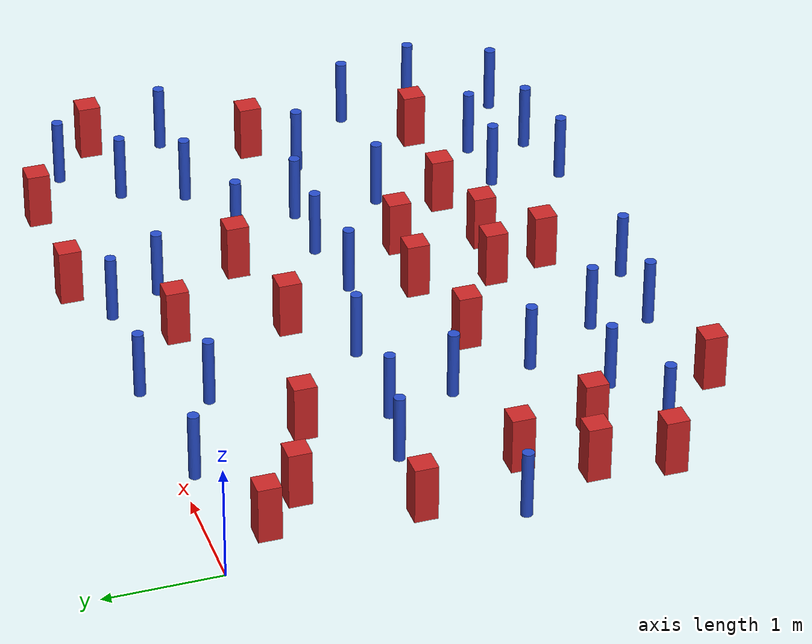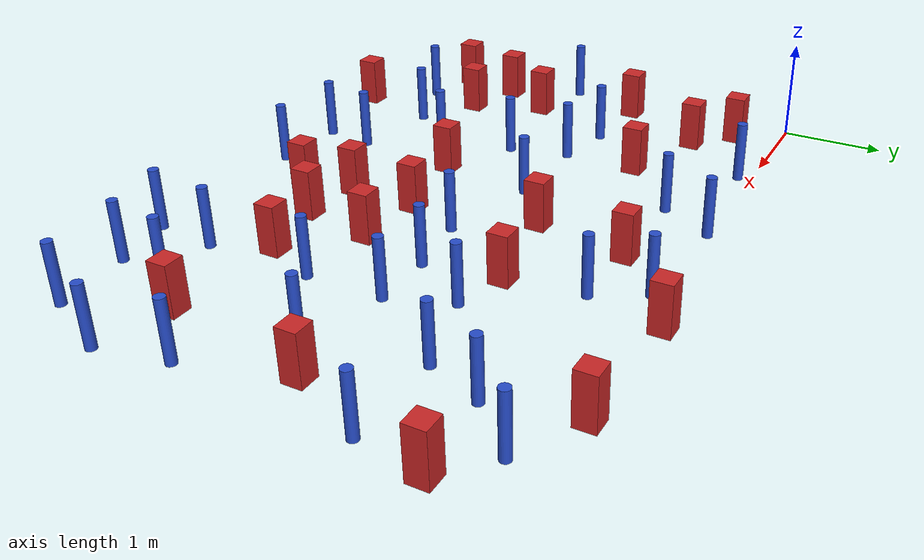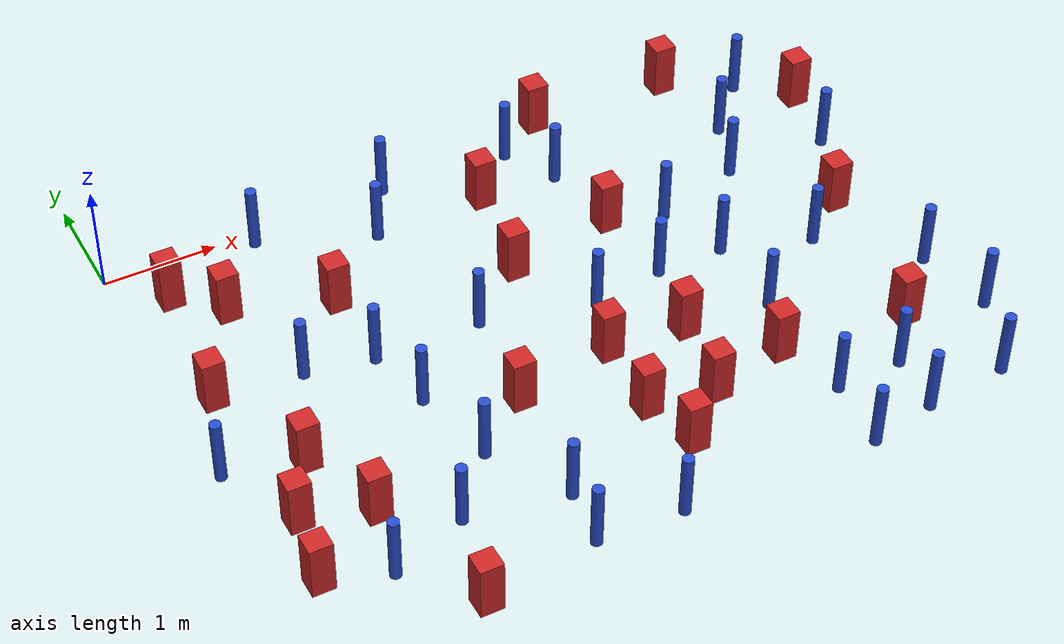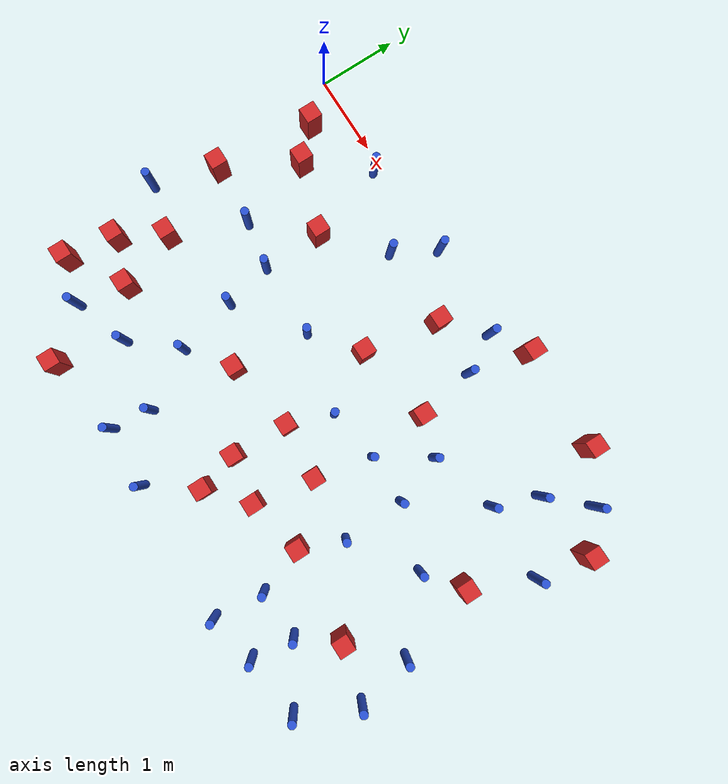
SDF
<sdf version="1.6">
 <model name="dense_77">
  <model name="square_post_obstacle9">
   <static>true</static>
   <pose>0.414913555912 -0.457877879147 1.91545236811e-07 -7.35059704564e-06 1.12565212e-07 2.39332434364e-05</pose>
   <link name="link">
    <pose>0 0 0.25 0 -0 0</pose>
    <inertial>
     <mass>100</mass>
     <inertia>
      <ixx>0.166667</ixx>
      <ixy>0</ixy>
      <ixz>0</ixz>
      <iyy>0.166667</iyy>
      <iyz>0</iyz>
      <izz>0.166667</izz>
     </inertia>
    </inertial>
    <collision name="collision"><geometry><box><size>.2 .2 .5</size></box></geometry></collision>
    <visual name="visual">
     <geometry><box><size>.2 .2 .5</size></box></geometry>
     <material>
      <script><name>Gazebo/Red</name><uri>file://media/materials/scripts/gazebo.material</uri></script>
     </material>
    </visual>
   </link>
  </model>
  <model name="pole_obstacle17">
   <static>true</static>
   <pose>2.30088741263 -4.41169465217 7.38925637345e-09 -8.47170692798e-08 1.24976765033e-08 -1.74513093019e-07</pose>
   <link name="link">
    <pose>0 0 0.3 0 -0 0</pose>
    <inertial>
     <mass>1</mass>
     <inertia><ixx>0.145833</ixx><ixy>0</ixy><ixz>0</ixz><iyy>0.145833</iyy><iyz>0</iyz><izz>0.125</izz></inertia>
    </inertial>
    <collision name="collision">
     <geometry><cylinder><radius>0.05</radius><length>.6</length></cylinder></geometry>
    </collision>
    <visual name="visual">
     <geometry><cylinder><radius>0.05</radius><length>.6</length></cylinder></geometry>
     <material>
      <script><name>Gazebo/Blue</name><uri>file://media/materials/scripts/gazebo.material</uri></script>
     </material>
    </visual>
   </link>
  </model>
  <model name="pole_obstacle18">
   <static>true</static>
   <pose>4.81392823287 -3.89418730835 7.38925637345e-09 -8.47170692798e-08 1.24976764937e-08 -1.74513093023e-07</pose>
   <link name="link">
    <pose>0 0 0.3 0 -0 0</pose>
    <inertial>
     <mass>1</mass>
     <inertia><ixx>0.145833</ixx><ixy>0</ixy><ixz>0</ixz><iyy>0.145833</iyy><iyz>0</iyz><izz>0.125</izz></inertia>
    </inertial>
    <collision name="collision">
     <geometry><cylinder><radius>0.05</radius><length>.6</length></cylinder></geometry>
    </collision>
    <visual name="visual">
     <geometry><cylinder><radius>0.05</radius><length>.6</length></cylinder></geometry>
     <material>
      <script><name>Gazebo/Blue</name><uri>file://media/materials/scripts/gazebo.material</uri></script>
     </material>
    </visual>
   </link>
  </model>
  <model name="pole_obstacle27">
   <static>true</static>
   <pose>2.58216904432 -1.89217607525 7.38925637345e-09 -8.471706928e-08 1.24976765152e-08 -1.74513093012e-07</pose>
   <link name="link">
    <pose>0 0 0.3 0 -0 0</pose>
    <inertial>
     <mass>1</mass>
     <inertia><ixx>0.145833</ixx><ixy>0</ixy><ixz>0</ixz><iyy>0.145833</iyy><iyz>0</iyz><izz>0.125</izz></inertia>
    </inertial>
    <collision name="collision">
     <geometry><cylinder><radius>0.05</radius><length>.6</length></cylinder></geometry>
    </collision>
    <visual name="visual">
     <geometry><cylinder><radius>0.05</radius><length>.6</length></cylinder></geometry>
     <material>
      <script><name>Gazebo/Blue</name><uri>file://media/materials/scripts/gazebo.material</uri></script>
     </material>
    </visual>
   </link>
  </model>
  <model name="pole_obstacle28">
   <static>true</static>
   <pose>6.43142556251 -3.62551673232 7.38925637345e-09 -8.47170692798e-08 1.24976764937e-08 -1.74513093023e-07</pose>
   <link name="link">
    <pose>0 0 0.3 0 -0 0</pose>
    <inertial>
     <mass>1</mass>
     <inertia><ixx>0.145833</ixx><ixy>0</ixy><ixz>0</ixz><iyy>0.145833</iyy><iyz>0</iyz><izz>0.125</izz></inertia>
    </inertial>
    <collision name="collision">
     <geometry><cylinder><radius>0.05</radius><length>.6</length></cylinder></geometry>
    </collision>
    <visual name="visual">
     <geometry><cylinder><radius>0.05</radius><length>.6</length></cylinder></geometry>
     <material>
      <script><name>Gazebo/Blue</name><uri>file://media/materials/scripts/gazebo.material</uri></script>
     </material>
    </visual>
   </link>
  </model>
  <model name="square_post_obstacle23">
   <static>true</static>
   <pose>3.29476710435 -0.517945850544 1.91545236811e-07 -7.35059704564e-06 1.12565212e-07 2.39332434364e-05</pose>
   <link name="link">
    <pose>0 0 0.25 0 -0 0</pose>
    <inertial>
     <mass>100</mass>
     <inertia>
      <ixx>0.166667</ixx>
      <ixy>0</ixy>
      <ixz>0</ixz>
      <iyy>0.166667</iyy>
      <iyz>0</iyz>
      <izz>0.166667</izz>
     </inertia>
    </inertial>
    <collision name="collision"><geometry><box><size>.2 .2 .5</size></box></geometry></collision>
    <visual name="visual">
     <geometry><box><size>.2 .2 .5</size></box></geometry>
     <material>
      <script><name>Gazebo/Red</name><uri>file://media/materials/scripts/gazebo.material</uri></script>
     </material>
    </visual>
   </link>
  </model>
  <model name="square_post_obstacle28">
   <static>true</static>
   <pose>4.1805404886 0.185177053721 1.91545236811e-07 -7.35059704564e-06 1.12565212e-07 2.39332434364e-05</pose>
   <link name="link">
    <pose>0 0 0.25 0 -0 0</pose>
    <inertial>
     <mass>100</mass>
     <inertia>
      <ixx>0.166667</ixx>
      <ixy>0</ixy>
      <ixz>0</ixz>
      <iyy>0.166667</iyy>
      <iyz>0</iyz>
      <izz>0.166667</izz>
     </inertia>
    </inertial>
    <collision name="collision"><geometry><box><size>.2 .2 .5</size></box></geometry></collision>
    <visual name="visual">
     <geometry><box><size>.2 .2 .5</size></box></geometry>
     <material>
      <script><name>Gazebo/Red</name><uri>file://media/materials/scripts/gazebo.material</uri></script>
     </material>
    </visual>
   </link>
  </model>
  <model name="pole_obstacle41">
   <static>true</static>
   <pose>1.49219804884 -3.75339099654 7.38925637345e-09 -8.47170692799e-08 1.24976765053e-08 -1.74513093017e-07</pose>
   <link name="link">
    <pose>0 0 0.3 0 -0 0</pose>
    <inertial>
     <mass>1</mass>
     <inertia><ixx>0.145833</ixx><ixy>0</ixy><ixz>0</ixz><iyy>0.145833</iyy><iyz>0</iyz><izz>0.125</izz></inertia>
    </inertial>
    <collision name="collision">
     <geometry><cylinder><radius>0.05</radius><length>.6</length></cylinder></geometry>
    </collision>
    <visual name="visual">
     <geometry><cylinder><radius>0.05</radius><length>.6</length></cylinder></geometry>
     <material>
      <script><name>Gazebo/Blue</name><uri>file://media/materials/scripts/gazebo.material</uri></script>
     </material>
    </visual>
   </link>
  </model>
  <model name="square_post_obstacle31">
   <static>true</static>
   <pose>0.288418971541 -1.70368269367 1.91545236811e-07 -7.35059704564e-06 1.12565212e-07 2.39332434364e-05</pose>
   <link name="link">
    <pose>0 0 0.25 0 -0 0</pose>
    <inertial>
     <mass>100</mass>
     <inertia>
      <ixx>0.166667</ixx>
      <ixy>0</ixy>
      <ixz>0</ixz>
      <iyy>0.166667</iyy>
      <iyz>0</iyz>
      <izz>0.166667</izz>
     </inertia>
    </inertial>
    <collision name="collision"><geometry><box><size>.2 .2 .5</size></box></geometry></collision>
    <visual name="visual">
     <geometry><box><size>.2 .2 .5</size></box></geometry>
     <material>
      <script><name>Gazebo/Red</name><uri>file://media/materials/scripts/gazebo.material</uri></script>
     </material>
    </visual>
   </link>
  </model>
  <model name="pole_obstacle50">
   <static>true</static>
   <pose>2.36343220063 -3.91300759229 7.38925637345e-09 -8.47170692798e-08 1.24976764939e-08 -1.74513093025e-07</pose>
   <link name="link">
    <pose>0 0 0.3 0 -0 0</pose>
    <inertial>
     <mass>1</mass>
     <inertia><ixx>0.145833</ixx><ixy>0</ixy><ixz>0</ixz><iyy>0.145833</iyy><iyz>0</iyz><izz>0.125</izz></inertia>
    </inertial>
    <collision name="collision">
     <geometry><cylinder><radius>0.05</radius><length>.6</length></cylinder></geometry>
    </collision>
    <visual name="visual">
     <geometry><cylinder><radius>0.05</radius><length>.6</length></cylinder></geometry>
     <material>
      <script><name>Gazebo/Blue</name><uri>file://media/materials/scripts/gazebo.material</uri></script>
     </material>
    </visual>
   </link>
  </model>
  <model name="pole_obstacle52">
   <static>true</static>
   <pose>4.60872668205 -1.43632139247 7.38925637345e-09 -8.471706928e-08 1.24976765134e-08 -1.74513093015e-07</pose>
   <link name="link">
    <pose>0 0 0.3 0 -0 0</pose>
    <inertial>
     <mass>1</mass>
     <inertia><ixx>0.145833</ixx><ixy>0</ixy><ixz>0</ixz><iyy>0.145833</iyy><iyz>0</iyz><izz>0.125</izz></inertia>
    </inertial>
    <collision name="collision">
     <geometry><cylinder><radius>0.05</radius><length>.6</length></cylinder></geometry>
    </collision>
    <visual name="visual">
     <geometry><cylinder><radius>0.05</radius><length>.6</length></cylinder></geometry>
     <material>
      <script><name>Gazebo/Blue</name><uri>file://media/materials/scripts/gazebo.material</uri></script>
     </material>
    </visual>
   </link>
  </model>
  <model name="pole_obstacle55">
   <static>true</static>
   <pose>1.78070648098 -2.47461447134 7.38925637345e-09 -8.47170692799e-08 1.24976765053e-08 -1.74513093017e-07</pose>
   <link name="link">
    <pose>0 0 0.3 0 -0 0</pose>
    <inertial>
     <mass>1</mass>
     <inertia><ixx>0.145833</ixx><ixy>0</ixy><ixz>0</ixz><iyy>0.145833</iyy><iyz>0</iyz><izz>0.125</izz></inertia>
    </inertial>
    <collision name="collision">
     <geometry><cylinder><radius>0.05</radius><length>.6</length></cylinder></geometry>
    </collision>
    <visual name="visual">
     <geometry><cylinder><radius>0.05</radius><length>.6</length></cylinder></geometry>
     <material>
      <script><name>Gazebo/Blue</name><uri>file://media/materials/scripts/gazebo.material</uri></script>
     </material>
    </visual>
   </link>
  </model>
  <model name="square_post_obstacle44">
   <static>true</static>
   <pose>0.777680810335 -0.81693266986 1.91545236811e-07 -7.35059704564e-06 1.12565212e-07 2.39332434364e-05</pose>
   <link name="link">
    <pose>0 0 0.25 0 -0 0</pose>
    <inertial>
     <mass>100</mass>
     <inertia>
      <ixx>0.166667</ixx>
      <ixy>0</ixy>
      <ixz>0</ixz>
      <iyy>0.166667</iyy>
      <iyz>0</iyz>
      <izz>0.166667</izz>
     </inertia>
    </inertial>
    <collision name="collision"><geometry><box><size>.2 .2 .5</size></box></geometry></collision>
    <visual name="visual">
     <geometry><box><size>.2 .2 .5</size></box></geometry>
     <material>
      <script><name>Gazebo/Red</name><uri>file://media/materials/scripts/gazebo.material</uri></script>
     </material>
    </visual>
   </link>
  </model>
  <model name="square_post_obstacle45">
   <static>true</static>
   <pose>0.678943746648 -2.65649669118 1.91545236811e-07 -7.35059704564e-06 1.12565212e-07 2.39332434364e-05</pose>
   <link name="link">
    <pose>0 0 0.25 0 -0 0</pose>
    <inertial>
     <mass>100</mass>
     <inertia>
      <ixx>0.166667</ixx>
      <ixy>0</ixy>
      <ixz>0</ixz>
      <iyy>0.166667</iyy>
      <iyz>0</iyz>
      <izz>0.166667</izz>
     </inertia>
    </inertial>
    <collision name="collision"><geometry><box><size>.2 .2 .5</size></box></geometry></collision>
    <visual name="visual">
     <geometry><box><size>.2 .2 .5</size></box></geometry>
     <material>
      <script><name>Gazebo/Red</name><uri>file://media/materials/scripts/gazebo.material</uri></script>
     </material>
    </visual>
   </link>
  </model>
  <model name="pole_obstacle62">
   <static>true</static>
   <pose>6.36205542575 -1.22188194844 7.38925637345e-09 -8.471706928e-08 1.24976765134e-08 -1.74513093015e-07</pose>
   <link name="link">
    <pose>0 0 0.3 0 -0 0</pose>
    <inertial>
     <mass>1</mass>
     <inertia><ixx>0.145833</ixx><ixy>0</ixy><ixz>0</ixz><iyy>0.145833</iyy><iyz>0</iyz><izz>0.125</izz></inertia>
    </inertial>
    <collision name="collision">
     <geometry><cylinder><radius>0.05</radius><length>.6</length></cylinder></geometry>
    </collision>
    <visual name="visual">
     <geometry><cylinder><radius>0.05</radius><length>.6</length></cylinder></geometry>
     <material>
      <script><name>Gazebo/Blue</name><uri>file://media/materials/scripts/gazebo.material</uri></script>
     </material>
    </visual>
   </link>
  </model>
  <model name="square_post_obstacle55">
   <static>true</static>
   <pose>5.46670627018 0.142808457622 1.91545236811e-07 -7.35059704564e-06 1.12565212e-07 2.39332434364e-05</pose>
   <link name="link">
    <pose>0 0 0.25 0 -0 0</pose>
    <inertial>
     <mass>100</mass>
     <inertia>
      <ixx>0.166667</ixx>
      <ixy>0</ixy>
      <ixz>0</ixz>
      <iyy>0.166667</iyy>
      <iyz>0</iyz>
      <izz>0.166667</izz>
     </inertia>
    </inertial>
    <collision name="collision"><geometry><box><size>.2 .2 .5</size></box></geometry></collision>
    <visual name="visual">
     <geometry><box><size>.2 .2 .5</size></box></geometry>
     <material>
      <script><name>Gazebo/Red</name><uri>file://media/materials/scripts/gazebo.material</uri></script>
     </material>
    </visual>
   </link>
  </model>
  <model name="pole_obstacle69">
   <static>true</static>
   <pose>4.81837307813 -2.03980980136 7.38925637345e-09 -8.471706928e-08 1.2497676506e-08 -1.74513093017e-07</pose>
   <link name="link">
    <pose>0 0 0.3 0 -0 0</pose>
    <inertial>
     <mass>1</mass>
     <inertia><ixx>0.145833</ixx><ixy>0</ixy><ixz>0</ixz><iyy>0.145833</iyy><iyz>0</iyz><izz>0.125</izz></inertia>
    </inertial>
    <collision name="collision">
     <geometry><cylinder><radius>0.05</radius><length>.6</length></cylinder></geometry>
    </collision>
    <visual name="visual">
     <geometry><cylinder><radius>0.05</radius><length>.6</length></cylinder></geometry>
     <material>
      <script><name>Gazebo/Blue</name><uri>file://media/materials/scripts/gazebo.material</uri></script>
     </material>
    </visual>
   </link>
  </model>
  <model name="square_post_obstacle63">
   <static>true</static>
   <pose>1.63152813365 -1.12639576349 1.91545236811e-07 -7.35059704564e-06 1.12565212e-07 2.39332434364e-05</pose>
   <link name="link">
    <pose>0 0 0.25 0 -0 0</pose>
    <inertial>
     <mass>100</mass>
     <inertia>
      <ixx>0.166667</ixx>
      <ixy>0</ixy>
      <ixz>0</ixz>
      <iyy>0.166667</iyy>
      <iyz>0</iyz>
      <izz>0.166667</izz>
     </inertia>
    </inertial>
    <collision name="collision"><geometry><box><size>.2 .2 .5</size></box></geometry></collision>
    <visual name="visual">
     <geometry><box><size>.2 .2 .5</size></box></geometry>
     <material>
      <script><name>Gazebo/Red</name><uri>file://media/materials/scripts/gazebo.material</uri></script>
     </material>
    </visual>
   </link>
  </model>
  <model name="square_post_obstacle70">
   <static>true</static>
   <pose>0.268658454997 -3.81487261849 1.91545236811e-07 -7.35059704564e-06 1.12565212e-07 2.39332434364e-05</pose>
   <link name="link">
    <pose>0 0 0.25 0 -0 0</pose>
    <inertial>
     <mass>100</mass>
     <inertia>
      <ixx>0.166667</ixx>
      <ixy>0</ixy>
      <ixz>0</ixz>
      <iyy>0.166667</iyy>
      <iyz>0</iyz>
      <izz>0.166667</izz>
     </inertia>
    </inertial>
    <collision name="collision"><geometry><box><size>.2 .2 .5</size></box></geometry></collision>
    <visual name="visual">
     <geometry><box><size>.2 .2 .5</size></box></geometry>
     <material>
      <script><name>Gazebo/Red</name><uri>file://media/materials/scripts/gazebo.material</uri></script>
     </material>
    </visual>
   </link>
  </model>
  <model name="pole_obstacle84">
   <static>true</static>
   <pose>2.29625827717 -0.527513924079 7.38925637345e-09 -8.471706928e-08 1.24976765186e-08 -1.74513093012e-07</pose>
   <link name="link">
    <pose>0 0 0.3 0 -0 0</pose>
    <inertial>
     <mass>1</mass>
     <inertia><ixx>0.145833</ixx><ixy>0</ixy><ixz>0</ixz><iyy>0.145833</iyy><iyz>0</iyz><izz>0.125</izz></inertia>
    </inertial>
    <collision name="collision">
     <geometry><cylinder><radius>0.05</radius><length>.6</length></cylinder></geometry>
    </collision>
    <visual name="visual">
     <geometry><cylinder><radius>0.05</radius><length>.6</length></cylinder></geometry>
     <material>
      <script><name>Gazebo/Blue</name><uri>file://media/materials/scripts/gazebo.material</uri></script>
     </material>
    </visual>
   </link>
  </model>
  <model name="square_post_obstacle75">
   <static>true</static>
   <pose>3.91525432647 -3.47301717205 1.91545236811e-07 -7.35059704564e-06 1.12565212e-07 2.39332434364e-05</pose>
   <link name="link">
    <pose>0 0 0.25 0 -0 0</pose>
    <inertial>
     <mass>100</mass>
     <inertia>
      <ixx>0.166667</ixx>
      <ixy>0</ixy>
      <ixz>0</ixz>
      <iyy>0.166667</iyy>
      <iyz>0</iyz>
      <izz>0.166667</izz>
     </inertia>
    </inertial>
    <collision name="collision"><geometry><box><size>.2 .2 .5</size></box></geometry></collision>
    <visual name="visual">
     <geometry><box><size>.2 .2 .5</size></box></geometry>
     <material>
      <script><name>Gazebo/Red</name><uri>file://media/materials/scripts/gazebo.material</uri></script>
     </material>
    </visual>
   </link>
  </model>
  <model name="pole_obstacle93">
   <static>true</static>
   <pose>1.95817246173 -3.22002427242 7.38925637345e-09 -8.47170692799e-08 1.24976765015e-08 -1.74513093019e-07</pose>
   <link name="link">
    <pose>0 0 0.3 0 -0 0</pose>
    <inertial>
     <mass>1</mass>
     <inertia><ixx>0.145833</ixx><ixy>0</ixy><ixz>0</ixz><iyy>0.145833</iyy><iyz>0</iyz><izz>0.125</izz></inertia>
    </inertial>
    <collision name="collision">
     <geometry><cylinder><radius>0.05</radius><length>.6</length></cylinder></geometry>
    </collision>
    <visual name="visual">
     <geometry><cylinder><radius>0.05</radius><length>.6</length></cylinder></geometry>
     <material>
      <script><name>Gazebo/Blue</name><uri>file://media/materials/scripts/gazebo.material</uri></script>
     </material>
    </visual>
   </link>
  </model>
  <model name="pole_obstacle95">
   <static>true</static>
   <pose>1.32256675412 -0.126356507794 7.38925637345e-09 -8.47170692798e-08 1.24976765004e-08 -1.7451309302e-07</pose>
   <link name="link">
    <pose>0 0 0.3 0 -0 0</pose>
    <inertial>
     <mass>1</mass>
     <inertia><ixx>0.145833</ixx><ixy>0</ixy><ixz>0</ixz><iyy>0.145833</iyy><iyz>0</iyz><izz>0.125</izz></inertia>
    </inertial>
    <collision name="collision">
     <geometry><cylinder><radius>0.05</radius><length>.6</length></cylinder></geometry>
    </collision>
    <visual name="visual">
     <geometry><cylinder><radius>0.05</radius><length>.6</length></cylinder></geometry>
     <material>
      <script><name>Gazebo/Blue</name><uri>file://media/materials/scripts/gazebo.material</uri></script>
     </material>
    </visual>
   </link>
  </model>
  <model name="square_post_obstacle93">
   <static>true</static>
   <pose>4.1162038449 -1.28578636467 1.91545236811e-07 -7.35059704564e-06 1.12565212e-07 2.39332434364e-05</pose>
   <link name="link">
    <pose>0 0 0.25 0 -0 0</pose>
    <inertial>
     <mass>100</mass>
     <inertia>
      <ixx>0.166667</ixx>
      <ixy>0</ixy>
      <ixz>0</ixz>
      <iyy>0.166667</iyy>
      <iyz>0</iyz>
      <izz>0.166667</izz>
     </inertia>
    </inertial>
    <collision name="collision"><geometry><box><size>.2 .2 .5</size></box></geometry></collision>
    <visual name="visual">
     <geometry><box><size>.2 .2 .5</size></box></geometry>
     <material>
      <script><name>Gazebo/Red</name><uri>file://media/materials/scripts/gazebo.material</uri></script>
     </material>
    </visual>
   </link>
  </model>
  <model name="square_post_obstacle96">
   <static>true</static>
   <pose>3.36142323224 -2.67453290748 1.91545236811e-07 -7.35059704564e-06 1.12565212e-07 2.39332434364e-05</pose>
   <link name="link">
    <pose>0 0 0.25 0 -0 0</pose>
    <inertial>
     <mass>100</mass>
     <inertia>
      <ixx>0.166667</ixx>
      <ixy>0</ixy>
      <ixz>0</ixz>
      <iyy>0.166667</iyy>
      <iyz>0</iyz>
      <izz>0.166667</izz>
     </inertia>
    </inertial>
    <collision name="collision"><geometry><box><size>.2 .2 .5</size></box></geometry></collision>
    <visual name="visual">
     <geometry><box><size>.2 .2 .5</size></box></geometry>
     <material>
      <script><name>Gazebo/Red</name><uri>file://media/materials/scripts/gazebo.material</uri></script>
     </material>
    </visual>
   </link>
  </model>
  <model name="pole_obstacle107">
   <static>true</static>
   <pose>5.4116193506 -3.87581239472 7.38925637345e-09 -8.47170692798e-08 1.24976764937e-08 -1.74513093023e-07</pose>
   <link name="link">
    <pose>0 0 0.3 0 -0 0</pose>
    <inertial>
     <mass>1</mass>
     <inertia><ixx>0.145833</ixx><ixy>0</ixy><ixz>0</ixz><iyy>0.145833</iyy><iyz>0</iyz><izz>0.125</izz></inertia>
    </inertial>
    <collision name="collision">
     <geometry><cylinder><radius>0.05</radius><length>.6</length></cylinder></geometry>
    </collision>
    <visual name="visual">
     <geometry><cylinder><radius>0.05</radius><length>.6</length></cylinder></geometry>
     <material>
      <script><name>Gazebo/Blue</name><uri>file://media/materials/scripts/gazebo.material</uri></script>
     </material>
    </visual>
   </link>
  </model>
  <model name="pole_obstacle115">
   <static>true</static>
   <pose>3.04978709195 -4.45508612711 7.38925637345e-09 -8.47170692798e-08 1.24976765033e-08 -1.74513093019e-07</pose>
   <link name="link">
    <pose>0 0 0.3 0 -0 0</pose>
    <inertial>
     <mass>1</mass>
     <inertia><ixx>0.145833</ixx><ixy>0</ixy><ixz>0</ixz><iyy>0.145833</iyy><iyz>0</iyz><izz>0.125</izz></inertia>
    </inertial>
    <collision name="collision">
     <geometry><cylinder><radius>0.05</radius><length>.6</length></cylinder></geometry>
    </collision>
    <visual name="visual">
     <geometry><cylinder><radius>0.05</radius><length>.6</length></cylinder></geometry>
     <material>
      <script><name>Gazebo/Blue</name><uri>file://media/materials/scripts/gazebo.material</uri></script>
     </material>
    </visual>
   </link>
  </model>
  <model name="pole_obstacle118">
   <static>true</static>
   <pose>1.64452792751 -1.87641165726 7.38925637345e-09 -8.471706928e-08 1.24976765079e-08 -1.74513093017e-07</pose>
   <link name="link">
    <pose>0 0 0.3 0 -0 0</pose>
    <inertial>
     <mass>1</mass>
     <inertia><ixx>0.145833</ixx><ixy>0</ixy><ixz>0</ixz><iyy>0.145833</iyy><iyz>0</iyz><izz>0.125</izz></inertia>
    </inertial>
    <collision name="collision">
     <geometry><cylinder><radius>0.05</radius><length>.6</length></cylinder></geometry>
    </collision>
    <visual name="visual">
     <geometry><cylinder><radius>0.05</radius><length>.6</length></cylinder></geometry>
     <material>
      <script><name>Gazebo/Blue</name><uri>file://media/materials/scripts/gazebo.material</uri></script>
     </material>
    </visual>
   </link>
  </model>
  <model name="pole_obstacle120">
   <static>true</static>
   <pose>4.83011272026 -2.80245545974 7.38925637345e-09 -8.47170692798e-08 1.24976764937e-08 -1.74513093023e-07</pose>
   <link name="link">
    <pose>0 0 0.3 0 -0 0</pose>
    <inertial>
     <mass>1</mass>
     <inertia><ixx>0.145833</ixx><ixy>0</ixy><ixz>0</ixz><iyy>0.145833</iyy><iyz>0</iyz><izz>0.125</izz></inertia>
    </inertial>
    <collision name="collision">
     <geometry><cylinder><radius>0.05</radius><length>.6</length></cylinder></geometry>
    </collision>
    <visual name="visual">
     <geometry><cylinder><radius>0.05</radius><length>.6</length></cylinder></geometry>
     <material>
      <script><name>Gazebo/Blue</name><uri>file://media/materials/scripts/gazebo.material</uri></script>
     </material>
    </visual>
   </link>
  </model>
  <model name="square_post_obstacle121">
   <static>true</static>
   <pose>5.75012717869 -3.43909623136 1.91545236811e-07 -7.35059704564e-06 1.12565212e-07 2.39332434364e-05</pose>
   <link name="link">
    <pose>0 0 0.25 0 -0 0</pose>
    <inertial>
     <mass>100</mass>
     <inertia>
      <ixx>0.166667</ixx>
      <ixy>0</ixy>
      <ixz>0</ixz>
      <iyy>0.166667</iyy>
      <iyz>0</iyz>
      <izz>0.166667</izz>
     </inertia>
    </inertial>
    <collision name="collision"><geometry><box><size>.2 .2 .5</size></box></geometry></collision>
    <visual name="visual">
     <geometry><box><size>.2 .2 .5</size></box></geometry>
     <material>
      <script><name>Gazebo/Red</name><uri>file://media/materials/scripts/gazebo.material</uri></script>
     </material>
    </visual>
   </link>
  </model>
  <model name="pole_obstacle126">
   <static>true</static>
   <pose>2.58010467965 -0.0102880229091 7.38925637345e-09 -8.471706928e-08 1.24976765137e-08 -1.74513093014e-07</pose>
   <link name="link">
    <pose>0 0 0.3 0 -0 0</pose>
    <inertial>
     <mass>1</mass>
     <inertia><ixx>0.145833</ixx><ixy>0</ixy><ixz>0</ixz><iyy>0.145833</iyy><iyz>0</iyz><izz>0.125</izz></inertia>
    </inertial>
    <collision name="collision">
     <geometry><cylinder><radius>0.05</radius><length>.6</length></cylinder></geometry>
    </collision>
    <visual name="visual">
     <geometry><cylinder><radius>0.05</radius><length>.6</length></cylinder></geometry>
     <material>
      <script><name>Gazebo/Blue</name><uri>file://media/materials/scripts/gazebo.material</uri></script>
     </material>
    </visual>
   </link>
  </model>
  <model name="pole_obstacle129">
   <static>true</static>
   <pose>4.75481092513 -4.51975838768 7.38925637345e-09 -8.47170692796e-08 1.24976764786e-08 -1.74513093032e-07</pose>
   <link name="link">
    <pose>0 0 0.3 0 -0 0</pose>
    <inertial>
     <mass>1</mass>
     <inertia><ixx>0.145833</ixx><ixy>0</ixy><ixz>0</ixz><iyy>0.145833</iyy><iyz>0</iyz><izz>0.125</izz></inertia>
    </inertial>
    <collision name="collision">
     <geometry><cylinder><radius>0.05</radius><length>.6</length></cylinder></geometry>
    </collision>
    <visual name="visual">
     <geometry><cylinder><radius>0.05</radius><length>.6</length></cylinder></geometry>
     <material>
      <script><name>Gazebo/Blue</name><uri>file://media/materials/scripts/gazebo.material</uri></script>
     </material>
    </visual>
   </link>
  </model>
  <model name="square_post_obstacle125">
   <static>true</static>
   <pose>4.04993005443 -2.73640748449 1.91545236811e-07 -7.35059704564e-06 1.12565212e-07 2.39332434364e-05</pose>
   <link name="link">
    <pose>0 0 0.25 0 -0 0</pose>
    <inertial>
     <mass>100</mass>
     <inertia>
      <ixx>0.166667</ixx>
      <ixy>0</ixy>
      <ixz>0</ixz>
      <iyy>0.166667</iyy>
      <iyz>0</iyz>
      <izz>0.166667</izz>
     </inertia>
    </inertial>
    <collision name="collision"><geometry><box><size>.2 .2 .5</size></box></geometry></collision>
    <visual name="visual">
     <geometry><box><size>.2 .2 .5</size></box></geometry>
     <material>
      <script><name>Gazebo/Red</name><uri>file://media/materials/scripts/gazebo.material</uri></script>
     </material>
    </visual>
   </link>
  </model>
  <model name="square_post_obstacle127">
   <static>true</static>
   <pose>0.372890647758 -3.1906439933 1.91545236811e-07 -7.35059704564e-06 1.12565212e-07 2.39332434364e-05</pose>
   <link name="link">
    <pose>0 0 0.25 0 -0 0</pose>
    <inertial>
     <mass>100</mass>
     <inertia>
      <ixx>0.166667</ixx>
      <ixy>0</ixy>
      <ixz>0</ixz>
      <iyy>0.166667</iyy>
      <iyz>0</iyz>
      <izz>0.166667</izz>
     </inertia>
    </inertial>
    <collision name="collision"><geometry><box><size>.2 .2 .5</size></box></geometry></collision>
    <visual name="visual">
     <geometry><box><size>.2 .2 .5</size></box></geometry>
     <material>
      <script><name>Gazebo/Red</name><uri>file://media/materials/scripts/gazebo.material</uri></script>
     </material>
    </visual>
   </link>
  </model>
  <model name="pole_obstacle132">
   <static>true</static>
   <pose>3.55675411654 -2.13776649317 7.38925637345e-09 -8.47170692798e-08 1.24976764939e-08 -1.74513093025e-07</pose>
   <link name="link">
    <pose>0 0 0.3 0 -0 0</pose>
    <inertial>
     <mass>1</mass>
     <inertia><ixx>0.145833</ixx><ixy>0</ixy><ixz>0</ixz><iyy>0.145833</iyy><iyz>0</iyz><izz>0.125</izz></inertia>
    </inertial>
    <collision name="collision">
     <geometry><cylinder><radius>0.05</radius><length>.6</length></cylinder></geometry>
    </collision>
    <visual name="visual">
     <geometry><cylinder><radius>0.05</radius><length>.6</length></cylinder></geometry>
     <material>
      <script><name>Gazebo/Blue</name><uri>file://media/materials/scripts/gazebo.material</uri></script>
     </material>
    </visual>
   </link>
  </model>
  <model name="square_post_obstacle129">
   <static>true</static>
   <pose>6.46682079812 -0.575488577503 1.91545236811e-07 -7.35059704564e-06 1.12565212e-07 2.39332434364e-05</pose>
   <link name="link">
    <pose>0 0 0.25 0 -0 0</pose>
    <inertial>
     <mass>100</mass>
     <inertia>
      <ixx>0.166667</ixx>
      <ixy>0</ixy>
      <ixz>0</ixz>
      <iyy>0.166667</iyy>
      <iyz>0</iyz>
      <izz>0.166667</izz>
     </inertia>
    </inertial>
    <collision name="collision"><geometry><box><size>.2 .2 .5</size></box></geometry></collision>
    <visual name="visual">
     <geometry><box><size>.2 .2 .5</size></box></geometry>
     <material>
      <script><name>Gazebo/Red</name><uri>file://media/materials/scripts/gazebo.material</uri></script>
     </material>
    </visual>
   </link>
  </model>
  <model name="square_post_obstacle139">
   <static>true</static>
   <pose>3.46304212744 -3.87284425612 1.91545236811e-07 -7.35059704564e-06 1.12565212e-07 2.39332434364e-05</pose>
   <link name="link">
    <pose>0 0 0.25 0 -0 0</pose>
    <inertial>
     <mass>100</mass>
     <inertia>
      <ixx>0.166667</ixx>
      <ixy>0</ixy>
      <ixz>0</ixz>
      <iyy>0.166667</iyy>
      <iyz>0</iyz>
      <izz>0.166667</izz>
     </inertia>
    </inertial>
    <collision name="collision"><geometry><box><size>.2 .2 .5</size></box></geometry></collision>
    <visual name="visual">
     <geometry><box><size>.2 .2 .5</size></box></geometry>
     <material>
      <script><name>Gazebo/Red</name><uri>file://media/materials/scripts/gazebo.material</uri></script>
     </material>
    </visual>
   </link>
  </model>
  <model name="pole_obstacle144">
   <static>true</static>
   <pose>4.00464949557 -0.555028928826 7.38925637345e-09 -8.471706928e-08 1.24976765147e-08 -1.74513093015e-07</pose>
   <link name="link">
    <pose>0 0 0.3 0 -0 0</pose>
    <inertial>
     <mass>1</mass>
     <inertia><ixx>0.145833</ixx><ixy>0</ixy><ixz>0</ixz><iyy>0.145833</iyy><iyz>0</iyz><izz>0.125</izz></inertia>
    </inertial>
    <collision name="collision">
     <geometry><cylinder><radius>0.05</radius><length>.6</length></cylinder></geometry>
    </collision>
    <visual name="visual">
     <geometry><cylinder><radius>0.05</radius><length>.6</length></cylinder></geometry>
     <material>
      <script><name>Gazebo/Blue</name><uri>file://media/materials/scripts/gazebo.material</uri></script>
     </material>
    </visual>
   </link>
  </model>
  <model name="pole_obstacle152">
   <static>true</static>
   <pose>3.75185980498 -0.0852785895553 7.38925637345e-09 -8.471706928e-08 1.24976765088e-08 -1.74513093017e-07</pose>
   <link name="link">
    <pose>0 0 0.3 0 -0 0</pose>
    <inertial>
     <mass>1</mass>
     <inertia><ixx>0.145833</ixx><ixy>0</ixy><ixz>0</ixz><iyy>0.145833</iyy><iyz>0</iyz><izz>0.125</izz></inertia>
    </inertial>
    <collision name="collision">
     <geometry><cylinder><radius>0.05</radius><length>.6</length></cylinder></geometry>
    </collision>
    <visual name="visual">
     <geometry><cylinder><radius>0.05</radius><length>.6</length></cylinder></geometry>
     <material>
      <script><name>Gazebo/Blue</name><uri>file://media/materials/scripts/gazebo.material</uri></script>
     </material>
    </visual>
   </link>
  </model>
  <model name="square_post_obstacle149">
   <static>true</static>
   <pose>1.29013576742 -4.56256453497 1.91545236811e-07 -7.35059704564e-06 1.12565212e-07 2.39332434364e-05</pose>
   <link name="link">
    <pose>0 0 0.25 0 -0 0</pose>
    <inertial>
     <mass>100</mass>
     <inertia>
      <ixx>0.166667</ixx>
      <ixy>0</ixy>
      <ixz>0</ixz>
      <iyy>0.166667</iyy>
      <iyz>0</iyz>
      <izz>0.166667</izz>
     </inertia>
    </inertial>
    <collision name="collision"><geometry><box><size>.2 .2 .5</size></box></geometry></collision>
    <visual name="visual">
     <geometry><box><size>.2 .2 .5</size></box></geometry>
     <material>
      <script><name>Gazebo/Red</name><uri>file://media/materials/scripts/gazebo.material</uri></script>
     </material>
    </visual>
   </link>
  </model>
  <model name="pole_obstacle165">
   <static>true</static>
   <pose>1.05296076845 -1.76444108085 7.38925637345e-09 -8.471706928e-08 1.24976765079e-08 -1.74513093017e-07</pose>
   <link name="link">
    <pose>0 0 0.3 0 -0 0</pose>
    <inertial>
     <mass>1</mass>
     <inertia><ixx>0.145833</ixx><ixy>0</ixy><ixz>0</ixz><iyy>0.145833</iyy><iyz>0</iyz><izz>0.125</izz></inertia>
    </inertial>
    <collision name="collision">
     <geometry><cylinder><radius>0.05</radius><length>.6</length></cylinder></geometry>
    </collision>
    <visual name="visual">
     <geometry><cylinder><radius>0.05</radius><length>.6</length></cylinder></geometry>
     <material>
      <script><name>Gazebo/Blue</name><uri>file://media/materials/scripts/gazebo.material</uri></script>
     </material>
    </visual>
   </link>
  </model>
  <model name="square_post_obstacle162">
   <static>true</static>
   <pose>4.60904931019 -3.31985496098 1.91545236811e-07 -7.35059704564e-06 1.12565212e-07 2.39332434364e-05</pose>
   <link name="link">
    <pose>0 0 0.25 0 -0 0</pose>
    <inertial>
     <mass>100</mass>
     <inertia>
      <ixx>0.166667</ixx>
      <ixy>0</ixy>
      <ixz>0</ixz>
      <iyy>0.166667</iyy>
      <iyz>0</iyz>
      <izz>0.166667</izz>
     </inertia>
    </inertial>
    <collision name="collision"><geometry><box><size>.2 .2 .5</size></box></geometry></collision>
    <visual name="visual">
     <geometry><box><size>.2 .2 .5</size></box></geometry>
     <material>
      <script><name>Gazebo/Red</name><uri>file://media/materials/scripts/gazebo.material</uri></script>
     </material>
    </visual>
   </link>
  </model>
  <model name="pole_obstacle168">
   <static>true</static>
   <pose>6.0608339516 -0.200465016436 7.38925637345e-09 -8.471706928e-08 1.24976765089e-08 -1.74513093017e-07</pose>
   <link name="link">
    <pose>0 0 0.3 0 -0 0</pose>
    <inertial>
     <mass>1</mass>
     <inertia><ixx>0.145833</ixx><ixy>0</ixy><ixz>0</ixz><iyy>0.145833</iyy><iyz>0</iyz><izz>0.125</izz></inertia>
    </inertial>
    <collision name="collision">
     <geometry><cylinder><radius>0.05</radius><length>.6</length></cylinder></geometry>
    </collision>
    <visual name="visual">
     <geometry><cylinder><radius>0.05</radius><length>.6</length></cylinder></geometry>
     <material>
      <script><name>Gazebo/Blue</name><uri>file://media/materials/scripts/gazebo.material</uri></script>
     </material>
    </visual>
   </link>
  </model>
  <model name="square_post_obstacle167">
   <static>true</static>
   <pose>0.943095343789 -3.38445851691 1.91545236811e-07 -7.35059704564e-06 1.12565212e-07 2.39332434364e-05</pose>
   <link name="link">
    <pose>0 0 0.25 0 -0 0</pose>
    <inertial>
     <mass>100</mass>
     <inertia>
      <ixx>0.166667</ixx>
      <ixy>0</ixy>
      <ixz>0</ixz>
      <iyy>0.166667</iyy>
      <iyz>0</iyz>
      <izz>0.166667</izz>
     </inertia>
    </inertial>
    <collision name="collision"><geometry><box><size>.2 .2 .5</size></box></geometry></collision>
    <visual name="visual">
     <geometry><box><size>.2 .2 .5</size></box></geometry>
     <material>
      <script><name>Gazebo/Red</name><uri>file://media/materials/scripts/gazebo.material</uri></script>
     </material>
    </visual>
   </link>
  </model>
  <model name="square_post_obstacle177">
   <static>true</static>
   <pose>2.46939267016 -2.83311302489 1.91545236811e-07 -7.35059704564e-06 1.12565212e-07 2.39332434364e-05</pose>
   <link name="link">
    <pose>0 0 0.25 0 -0 0</pose>
    <inertial>
     <mass>100</mass>
     <inertia>
      <ixx>0.166667</ixx>
      <ixy>0</ixy>
      <ixz>0</ixz>
      <iyy>0.166667</iyy>
      <iyz>0</iyz>
      <izz>0.166667</izz>
     </inertia>
    </inertial>
    <collision name="collision"><geometry><box><size>.2 .2 .5</size></box></geometry></collision>
    <visual name="visual">
     <geometry><box><size>.2 .2 .5</size></box></geometry>
     <material>
      <script><name>Gazebo/Red</name><uri>file://media/materials/scripts/gazebo.material</uri></script>
     </material>
    </visual>
   </link>
  </model>
  <model name="square_post_obstacle182">
   <static>true</static>
   <pose>3.12638604866 -1.45583190968 1.91545236811e-07 -7.35059704564e-06 1.12565212e-07 2.39332434364e-05</pose>
   <link name="link">
    <pose>0 0 0.25 0 -0 0</pose>
    <inertial>
     <mass>100</mass>
     <inertia>
      <ixx>0.166667</ixx>
      <ixy>0</ixy>
      <ixz>0</ixz>
      <iyy>0.166667</iyy>
      <iyz>0</iyz>
      <izz>0.166667</izz>
     </inertia>
    </inertial>
    <collision name="collision"><geometry><box><size>.2 .2 .5</size></box></geometry></collision>
    <visual name="visual">
     <geometry><box><size>.2 .2 .5</size></box></geometry>
     <material>
      <script><name>Gazebo/Red</name><uri>file://media/materials/scripts/gazebo.material</uri></script>
     </material>
    </visual>
   </link>
  </model>
  <model name="square_post_obstacle189">
   <static>true</static>
   <pose>6.00486077138 -1.95846174106 1.91545236811e-07 -7.35059704564e-06 1.12565212e-07 2.39332434364e-05</pose>
   <link name="link">
    <pose>0 0 0.25 0 -0 0</pose>
    <inertial>
     <mass>100</mass>
     <inertia>
      <ixx>0.166667</ixx>
      <ixy>0</ixy>
      <ixz>0</ixz>
      <iyy>0.166667</iyy>
      <iyz>0</iyz>
      <izz>0.166667</izz>
     </inertia>
    </inertial>
    <collision name="collision"><geometry><box><size>.2 .2 .5</size></box></geometry></collision>
    <visual name="visual">
     <geometry><box><size>.2 .2 .5</size></box></geometry>
     <material>
      <script><name>Gazebo/Red</name><uri>file://media/materials/scripts/gazebo.material</uri></script>
     </material>
    </visual>
   </link>
  </model>
  <model name="square_post_obstacle190">
   <static>true</static>
   <pose>3.32899678076 -3.37522071215 1.91545236811e-07 -7.35059704564e-06 1.12565212e-07 2.39332434364e-05</pose>
   <link name="link">
    <pose>0 0 0.25 0 -0 0</pose>
    <inertial>
     <mass>100</mass>
     <inertia>
      <ixx>0.166667</ixx>
      <ixy>0</ixy>
      <ixz>0</ixz>
      <iyy>0.166667</iyy>
      <iyz>0</iyz>
      <izz>0.166667</izz>
     </inertia>
    </inertial>
    <collision name="collision"><geometry><box><size>.2 .2 .5</size></box></geometry></collision>
    <visual name="visual">
     <geometry><box><size>.2 .2 .5</size></box></geometry>
     <material>
      <script><name>Gazebo/Red</name><uri>file://media/materials/scripts/gazebo.material</uri></script>
     </material>
    </visual>
   </link>
  </model>
  <model name="pole_obstacle191">
   <static>true</static>
   <pose>6.29042569786 -2.94036368673 7.38925637345e-09 -8.47170692798e-08 1.24976764937e-08 -1.74513093023e-07</pose>
   <link name="link">
    <pose>0 0 0.3 0 -0 0</pose>
    <inertial>
     <mass>1</mass>
     <inertia><ixx>0.145833</ixx><ixy>0</ixy><ixz>0</ixz><iyy>0.145833</iyy><iyz>0</iyz><izz>0.125</izz></inertia>
    </inertial>
    <collision name="collision">
     <geometry><cylinder><radius>0.05</radius><length>.6</length></cylinder></geometry>
    </collision>
    <visual name="visual">
     <geometry><cylinder><radius>0.05</radius><length>.6</length></cylinder></geometry>
     <material>
      <script><name>Gazebo/Blue</name><uri>file://media/materials/scripts/gazebo.material</uri></script>
     </material>
    </visual>
   </link>
  </model>
  <model name="pole_obstacle202">
   <static>true</static>
   <pose>5.41929144777 -1.19675685623 7.38925637345e-09 -8.471706928e-08 1.24976765134e-08 -1.74513093015e-07</pose>
   <link name="link">
    <pose>0 0 0.3 0 -0 0</pose>
    <inertial>
     <mass>1</mass>
     <inertia><ixx>0.145833</ixx><ixy>0</ixy><ixz>0</ixz><iyy>0.145833</iyy><iyz>0</iyz><izz>0.125</izz></inertia>
    </inertial>
    <collision name="collision">
     <geometry><cylinder><radius>0.05</radius><length>.6</length></cylinder></geometry>
    </collision>
    <visual name="visual">
     <geometry><cylinder><radius>0.05</radius><length>.6</length></cylinder></geometry>
     <material>
      <script><name>Gazebo/Blue</name><uri>file://media/materials/scripts/gazebo.material</uri></script>
     </material>
    </visual>
   </link>
  </model>
  <model name="pole_obstacle210">
   <static>true</static>
   <pose>6.10340799415 -4.32400878838 7.38925637345e-09 -8.47170692796e-08 1.24976764786e-08 -1.74513093032e-07</pose>
   <link name="link">
    <pose>0 0 0.3 0 -0 0</pose>
    <inertial>
     <mass>1</mass>
     <inertia><ixx>0.145833</ixx><ixy>0</ixy><ixz>0</ixz><iyy>0.145833</iyy><iyz>0</iyz><izz>0.125</izz></inertia>
    </inertial>
    <collision name="collision">
     <geometry><cylinder><radius>0.05</radius><length>.6</length></cylinder></geometry>
    </collision>
    <visual name="visual">
     <geometry><cylinder><radius>0.05</radius><length>.6</length></cylinder></geometry>
     <material>
      <script><name>Gazebo/Blue</name><uri>file://media/materials/scripts/gazebo.material</uri></script>
     </material>
    </visual>
   </link>
  </model>
  <model name="pole_obstacle212">
   <static>true</static>
   <pose>5.35573239636 -4.39843027151 7.38925637345e-09 -8.47170692796e-08 1.24976764786e-08 -1.74513093032e-07</pose>
   <link name="link">
    <pose>0 0 0.3 0 -0 0</pose>
    <inertial>
     <mass>1</mass>
     <inertia><ixx>0.145833</ixx><ixy>0</ixy><ixz>0</ixz><iyy>0.145833</iyy><iyz>0</iyz><izz>0.125</izz></inertia>
    </inertial>
    <collision name="collision">
     <geometry><cylinder><radius>0.05</radius><length>.6</length></cylinder></geometry>
    </collision>
    <visual name="visual">
     <geometry><cylinder><radius>0.05</radius><length>.6</length></cylinder></geometry>
     <material>
      <script><name>Gazebo/Blue</name><uri>file://media/materials/scripts/gazebo.material</uri></script>
     </material>
    </visual>
   </link>
  </model>
  <model name="pole_obstacle213">
   <static>true</static>
   <pose>5.62881732676 -0.658724111898 7.38925637345e-09 -8.47170692799e-08 1.24976765038e-08 -1.74513093018e-07</pose>
   <link name="link">
    <pose>0 0 0.3 0 -0 0</pose>
    <inertial>
     <mass>1</mass>
     <inertia><ixx>0.145833</ixx><ixy>0</ixy><ixz>0</ixz><iyy>0.145833</iyy><iyz>0</iyz><izz>0.125</izz></inertia>
    </inertial>
    <collision name="collision">
     <geometry><cylinder><radius>0.05</radius><length>.6</length></cylinder></geometry>
    </collision>
    <visual name="visual">
     <geometry><cylinder><radius>0.05</radius><length>.6</length></cylinder></geometry>
     <material>
      <script><name>Gazebo/Blue</name><uri>file://media/materials/scripts/gazebo.material</uri></script>
     </material>
    </visual>
   </link>
  </model>
  <model name="pole_obstacle214">
   <static>true</static>
   <pose>0.812067003908 -3.99861042105 7.38925637345e-09 -8.471706928e-08 1.2497676523e-08 -1.7451309301e-07</pose>
   <link name="link">
    <pose>0 0 0.3 0 -0 0</pose>
    <inertial>
     <mass>1</mass>
     <inertia><ixx>0.145833</ixx><ixy>0</ixy><ixz>0</ixz><iyy>0.145833</iyy><iyz>0</iyz><izz>0.125</izz></inertia>
    </inertial>
    <collision name="collision">
     <geometry><cylinder><radius>0.05</radius><length>.6</length></cylinder></geometry>
    </collision>
    <visual name="visual">
     <geometry><cylinder><radius>0.05</radius><length>.6</length></cylinder></geometry>
     <material>
      <script><name>Gazebo/Blue</name><uri>file://media/materials/scripts/gazebo.material</uri></script>
     </material>
    </visual>
   </link>
  </model>
  <model name="pole_obstacle216">
   <static>true</static>
   <pose>0.0299542098249 -2.48621785911 7.38925637345e-09 -8.471706928e-08 1.24976765089e-08 -1.74513093014e-07</pose>
   <link name="link">
    <pose>0 0 0.3 0 -0 0</pose>
    <inertial>
     <mass>1</mass>
     <inertia><ixx>0.145833</ixx><ixy>0</ixy><ixz>0</ixz><iyy>0.145833</iyy><iyz>0</iyz><izz>0.125</izz></inertia>
    </inertial>
    <collision name="collision">
     <geometry><cylinder><radius>0.05</radius><length>.6</length></cylinder></geometry>
    </collision>
    <visual name="visual">
     <geometry><cylinder><radius>0.05</radius><length>.6</length></cylinder></geometry>
     <material>
      <script><name>Gazebo/Blue</name><uri>file://media/materials/scripts/gazebo.material</uri></script>
     </material>
    </visual>
   </link>
  </model>
  <model name="pole_obstacle234">
   <static>true</static>
   <pose>4.21152000957 -2.03823997922 7.38925637345e-09 -8.471706928e-08 1.2497676506e-08 -1.74513093017e-07</pose>
   <link name="link">
    <pose>0 0 0.3 0 -0 0</pose>
    <inertial>
     <mass>1</mass>
     <inertia><ixx>0.145833</ixx><ixy>0</ixy><ixz>0</ixz><iyy>0.145833</iyy><iyz>0</iyz><izz>0.125</izz></inertia>
    </inertial>
    <collision name="collision">
     <geometry><cylinder><radius>0.05</radius><length>.6</length></cylinder></geometry>
    </collision>
    <visual name="visual">
     <geometry><cylinder><radius>0.05</radius><length>.6</length></cylinder></geometry>
     <material>
      <script><name>Gazebo/Blue</name><uri>file://media/materials/scripts/gazebo.material</uri></script>
     </material>
    </visual>
   </link>
  </model>
  <model name="pole_obstacle241">
   <static>true</static>
   <pose>5.58895000957 -2.29183997922 7.38925637345e-09 -8.47170692799e-08 1.24976765028e-08 -1.74513093019e-07</pose>
   <link name="link">
    <pose>0 0 0.3 0 -0 0</pose>
    <inertial>
     <mass>1</mass>
     <inertia><ixx>0.145833</ixx><ixy>0</ixy><ixz>0</ixz><iyy>0.145833</iyy><iyz>0</iyz><izz>0.125</izz></inertia>
    </inertial>
    <collision name="collision">
     <geometry><cylinder><radius>0.05</radius><length>.6</length></cylinder></geometry>
    </collision>
    <visual name="visual">
     <geometry><cylinder><radius>0.05</radius><length>.6</length></cylinder></geometry>
     <material>
      <script><name>Gazebo/Blue</name><uri>file://media/materials/scripts/gazebo.material</uri></script>
     </material>
    </visual>
   </link>
  </model>
 </model>
</sdf>
